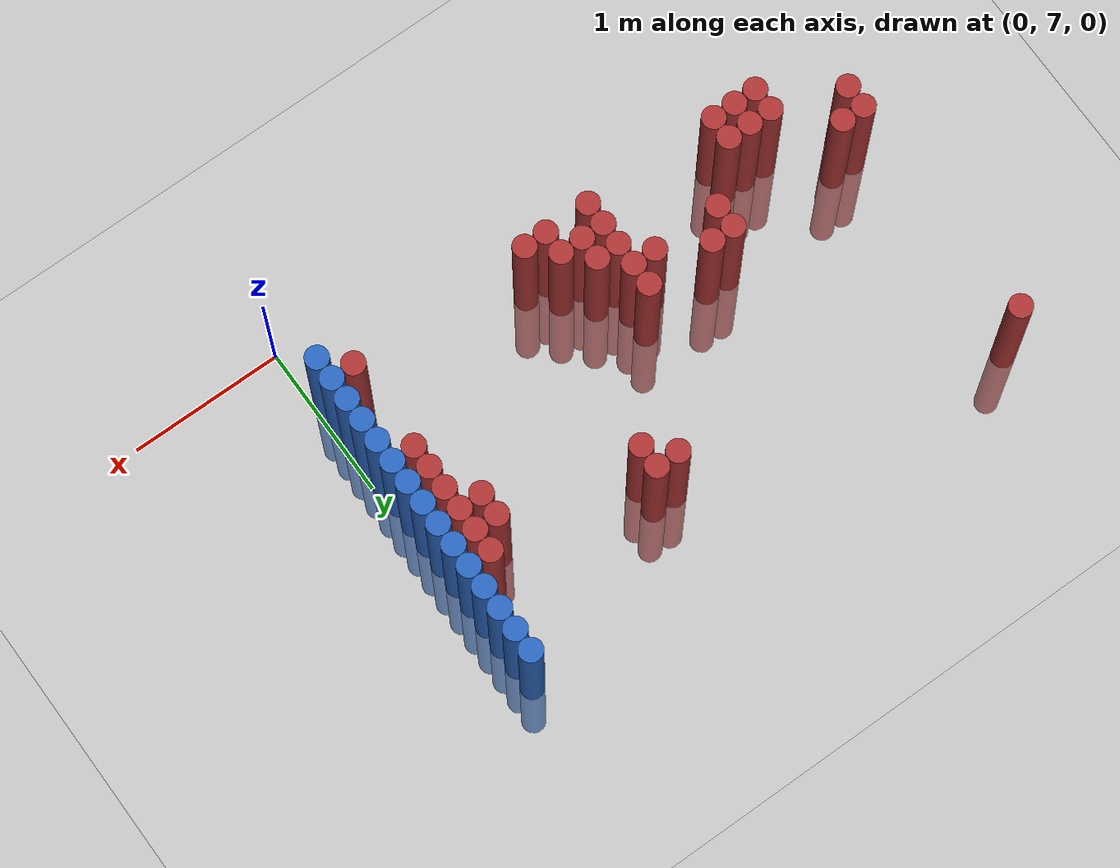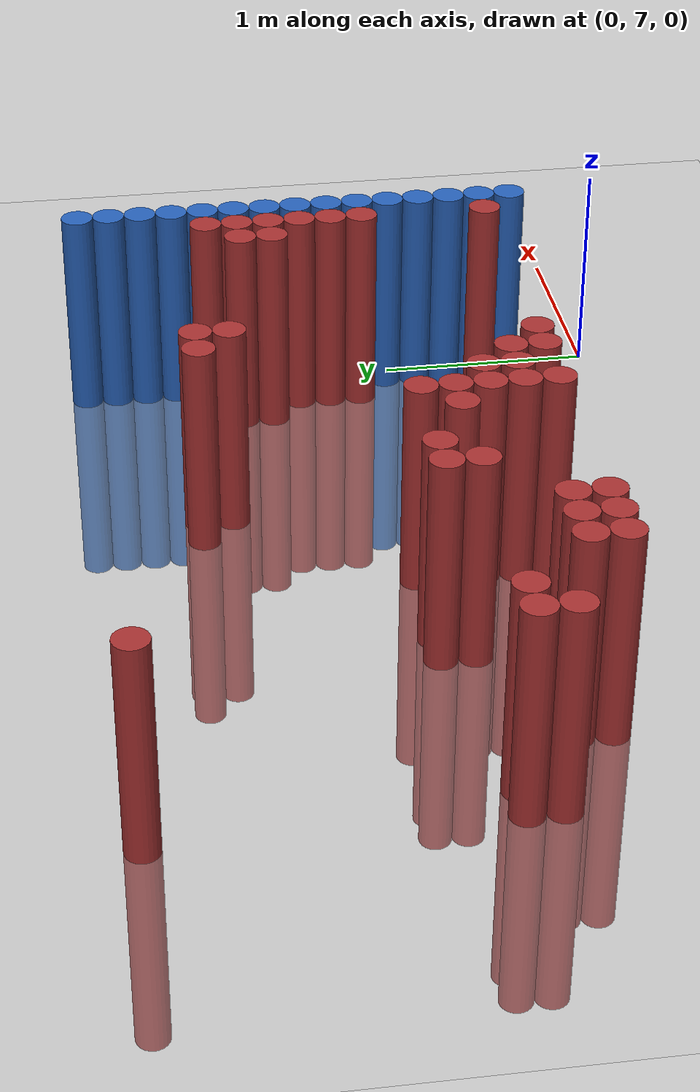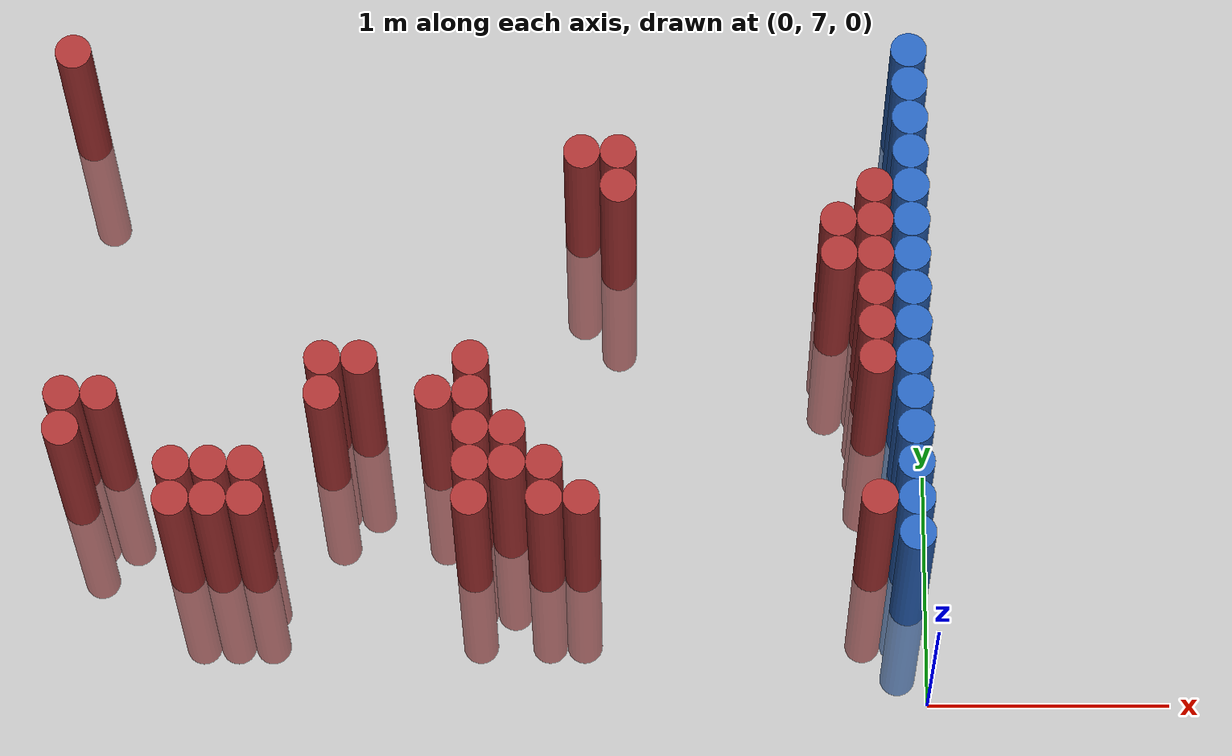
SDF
<sdf version="1.6">
 <world name="default">
  <model name="ground_plane">
   <static>1</static>
   <link name="link">
    <collision name="collision">
     <geometry><plane><normal>0 0 1</normal><size>100 100</size></plane></geometry>
     <surface><friction><ode><mu>100</mu><mu2>50</mu2></ode></friction></surface>
    </collision>
    <visual name="visual">
     <cast_shadows>0</cast_shadows>
     <geometry><plane><normal>0 0 1</normal><size>100 100</size></plane></geometry>
     <material>
      <script><uri>file://media/materials/scripts/gazebo.material</uri><name>Gazebo/Grey</name></script>
     </material>
    </visual>
   </link>
  </model>
  <model name="unit_cylinder_150">
   <static>1</static>
   <pose>-3.525000 7.875000 0.000000 0.000000 0.000000 0.000000</pose>
   <link name="link">
    <inertial>
     <mass>1</mass>
     <inertia><ixx>0.145833</ixx><ixy>0</ixy><ixz>0</ixz><iyy>0.145833</iyy><iyz>0</iyz><izz>0.125</izz></inertia>
    </inertial>
    <collision name="collision">
     <geometry><cylinder><radius>0.075000</radius><length>2</length></cylinder></geometry>
    </collision>
    <visual name="visual">
     <geometry><cylinder><radius>0.075000</radius><length>2</length></cylinder></geometry>
     <material>
      <ambient>0.648000 0.192000 0.192000 1</ambient>
      <diffuse>0.648000 0.192000 0.192000 1</diffuse>
     </material>
     <material>
      <script><name>Gazebo/Grey</name><uri>file://media/materials/scripts/gazebo.material</uri></script>
     </material>
    </visual>
   </link>
  </model>
  <model name="unit_cylinder_151">
   <static>1</static>
   <pose>-3.525000 8.025000 0.000000 0.000000 0.000000 0.000000</pose>
   <link name="link">
    <inertial>
     <mass>1</mass>
     <inertia><ixx>0.145833</ixx><ixy>0</ixy><ixz>0</ixz><iyy>0.145833</iyy><iyz>0</iyz><izz>0.125</izz></inertia>
    </inertial>
    <collision name="collision">
     <geometry><cylinder><radius>0.075000</radius><length>2</length></cylinder></geometry>
    </collision>
    <visual name="visual">
     <geometry><cylinder><radius>0.075000</radius><length>2</length></cylinder></geometry>
     <material>
      <ambient>0.648000 0.192000 0.192000 1</ambient>
      <diffuse>0.648000 0.192000 0.192000 1</diffuse>
     </material>
     <material>
      <script><name>Gazebo/Grey</name><uri>file://media/materials/scripts/gazebo.material</uri></script>
     </material>
    </visual>
   </link>
  </model>
  <model name="unit_cylinder_152">
   <static>1</static>
   <pose>-3.525000 9.525000 0.000000 0.000000 0.000000 0.000000</pose>
   <link name="link">
    <inertial>
     <mass>1</mass>
     <inertia><ixx>0.145833</ixx><ixy>0</ixy><ixz>0</ixz><iyy>0.145833</iyy><iyz>0</iyz><izz>0.125</izz></inertia>
    </inertial>
    <collision name="collision">
     <geometry><cylinder><radius>0.075000</radius><length>2</length></cylinder></geometry>
    </collision>
    <visual name="visual">
     <geometry><cylinder><radius>0.075000</radius><length>2</length></cylinder></geometry>
     <material>
      <ambient>0.648000 0.192000 0.192000 1</ambient>
      <diffuse>0.648000 0.192000 0.192000 1</diffuse>
     </material>
     <material>
      <script><name>Gazebo/Grey</name><uri>file://media/materials/scripts/gazebo.material</uri></script>
     </material>
    </visual>
   </link>
  </model>
  <model name="unit_cylinder_155">
   <static>1</static>
   <pose>-3.375000 8.025000 0.000000 0.000000 0.000000 0.000000</pose>
   <link name="link">
    <inertial>
     <mass>1</mass>
     <inertia><ixx>0.145833</ixx><ixy>0</ixy><ixz>0</ixz><iyy>0.145833</iyy><iyz>0</iyz><izz>0.125</izz></inertia>
    </inertial>
    <collision name="collision">
     <geometry><cylinder><radius>0.075000</radius><length>2</length></cylinder></geometry>
    </collision>
    <visual name="visual">
     <geometry><cylinder><radius>0.075000</radius><length>2</length></cylinder></geometry>
     <material>
      <ambient>0.648000 0.192000 0.192000 1</ambient>
      <diffuse>0.648000 0.192000 0.192000 1</diffuse>
     </material>
     <material>
      <script><name>Gazebo/Grey</name><uri>file://media/materials/scripts/gazebo.material</uri></script>
     </material>
    </visual>
   </link>
  </model>
  <model name="unit_cylinder_166">
   <static>1</static>
   <pose>-3.075000 7.575000 0.000000 0.000000 0.000000 0.000000</pose>
   <link name="link">
    <inertial>
     <mass>1</mass>
     <inertia><ixx>0.145833</ixx><ixy>0</ixy><ixz>0</ixz><iyy>0.145833</iyy><iyz>0</iyz><izz>0.125</izz></inertia>
    </inertial>
    <collision name="collision">
     <geometry><cylinder><radius>0.075000</radius><length>2</length></cylinder></geometry>
    </collision>
    <visual name="visual">
     <geometry><cylinder><radius>0.075000</radius><length>2</length></cylinder></geometry>
     <material>
      <ambient>0.648000 0.192000 0.192000 1</ambient>
      <diffuse>0.648000 0.192000 0.192000 1</diffuse>
     </material>
     <material>
      <script><name>Gazebo/Grey</name><uri>file://media/materials/scripts/gazebo.material</uri></script>
     </material>
    </visual>
   </link>
  </model>
  <model name="unit_cylinder_167">
   <static>1</static>
   <pose>-3.075000 7.725000 0.000000 0.000000 0.000000 0.000000</pose>
   <link name="link">
    <inertial>
     <mass>1</mass>
     <inertia><ixx>0.145833</ixx><ixy>0</ixy><ixz>0</ixz><iyy>0.145833</iyy><iyz>0</iyz><izz>0.125</izz></inertia>
    </inertial>
    <collision name="collision">
     <geometry><cylinder><radius>0.075000</radius><length>2</length></cylinder></geometry>
    </collision>
    <visual name="visual">
     <geometry><cylinder><radius>0.075000</radius><length>2</length></cylinder></geometry>
     <material>
      <ambient>0.648000 0.192000 0.192000 1</ambient>
      <diffuse>0.648000 0.192000 0.192000 1</diffuse>
     </material>
     <material>
      <script><name>Gazebo/Grey</name><uri>file://media/materials/scripts/gazebo.material</uri></script>
     </material>
    </visual>
   </link>
  </model>
  <model name="unit_cylinder_170">
   <static>1</static>
   <pose>-2.925000 7.575000 0.000000 0.000000 0.000000 0.000000</pose>
   <link name="link">
    <inertial>
     <mass>1</mass>
     <inertia><ixx>0.145833</ixx><ixy>0</ixy><ixz>0</ixz><iyy>0.145833</iyy><iyz>0</iyz><izz>0.125</izz></inertia>
    </inertial>
    <collision name="collision">
     <geometry><cylinder><radius>0.075000</radius><length>2</length></cylinder></geometry>
    </collision>
    <visual name="visual">
     <geometry><cylinder><radius>0.075000</radius><length>2</length></cylinder></geometry>
     <material>
      <ambient>0.648000 0.192000 0.192000 1</ambient>
      <diffuse>0.648000 0.192000 0.192000 1</diffuse>
     </material>
     <material>
      <script><name>Gazebo/Grey</name><uri>file://media/materials/scripts/gazebo.material</uri></script>
     </material>
    </visual>
   </link>
  </model>
  <model name="unit_cylinder_171">
   <static>1</static>
   <pose>-2.925000 7.725000 0.000000 0.000000 0.000000 0.000000</pose>
   <link name="link">
    <inertial>
     <mass>1</mass>
     <inertia><ixx>0.145833</ixx><ixy>0</ixy><ixz>0</ixz><iyy>0.145833</iyy><iyz>0</iyz><izz>0.125</izz></inertia>
    </inertial>
    <collision name="collision">
     <geometry><cylinder><radius>0.075000</radius><length>2</length></cylinder></geometry>
    </collision>
    <visual name="visual">
     <geometry><cylinder><radius>0.075000</radius><length>2</length></cylinder></geometry>
     <material>
      <ambient>0.648000 0.192000 0.192000 1</ambient>
      <diffuse>0.648000 0.192000 0.192000 1</diffuse>
     </material>
     <material>
      <script><name>Gazebo/Grey</name><uri>file://media/materials/scripts/gazebo.material</uri></script>
     </material>
    </visual>
   </link>
  </model>
  <model name="unit_cylinder_173">
   <static>1</static>
   <pose>-2.775000 7.575000 0.000000 0.000000 0.000000 0.000000</pose>
   <link name="link">
    <inertial>
     <mass>1</mass>
     <inertia><ixx>0.145833</ixx><ixy>0</ixy><ixz>0</ixz><iyy>0.145833</iyy><iyz>0</iyz><izz>0.125</izz></inertia>
    </inertial>
    <collision name="collision">
     <geometry><cylinder><radius>0.075000</radius><length>2</length></cylinder></geometry>
    </collision>
    <visual name="visual">
     <geometry><cylinder><radius>0.075000</radius><length>2</length></cylinder></geometry>
     <material>
      <ambient>0.648000 0.192000 0.192000 1</ambient>
      <diffuse>0.648000 0.192000 0.192000 1</diffuse>
     </material>
     <material>
      <script><name>Gazebo/Grey</name><uri>file://media/materials/scripts/gazebo.material</uri></script>
     </material>
    </visual>
   </link>
  </model>
  <model name="unit_cylinder_174">
   <static>1</static>
   <pose>-2.775000 7.725000 0.000000 0.000000 0.000000 0.000000</pose>
   <link name="link">
    <inertial>
     <mass>1</mass>
     <inertia><ixx>0.145833</ixx><ixy>0</ixy><ixz>0</ixz><iyy>0.145833</iyy><iyz>0</iyz><izz>0.125</izz></inertia>
    </inertial>
    <collision name="collision">
     <geometry><cylinder><radius>0.075000</radius><length>2</length></cylinder></geometry>
    </collision>
    <visual name="visual">
     <geometry><cylinder><radius>0.075000</radius><length>2</length></cylinder></geometry>
     <material>
      <ambient>0.648000 0.192000 0.192000 1</ambient>
      <diffuse>0.648000 0.192000 0.192000 1</diffuse>
     </material>
     <material>
      <script><name>Gazebo/Grey</name><uri>file://media/materials/scripts/gazebo.material</uri></script>
     </material>
    </visual>
   </link>
  </model>
  <model name="unit_cylinder_175">
   <static>1</static>
   <pose>-2.475000 8.025000 0.000000 0.000000 0.000000 0.000000</pose>
   <link name="link">
    <inertial>
     <mass>1</mass>
     <inertia><ixx>0.145833</ixx><ixy>0</ixy><ixz>0</ixz><iyy>0.145833</iyy><iyz>0</iyz><izz>0.125</izz></inertia>
    </inertial>
    <collision name="collision">
     <geometry><cylinder><radius>0.075000</radius><length>2</length></cylinder></geometry>
    </collision>
    <visual name="visual">
     <geometry><cylinder><radius>0.075000</radius><length>2</length></cylinder></geometry>
     <material>
      <ambient>0.648000 0.192000 0.192000 1</ambient>
      <diffuse>0.648000 0.192000 0.192000 1</diffuse>
     </material>
     <material>
      <script><name>Gazebo/Grey</name><uri>file://media/materials/scripts/gazebo.material</uri></script>
     </material>
    </visual>
   </link>
  </model>
  <model name="unit_cylinder_176">
   <static>1</static>
   <pose>-2.475000 8.175000 0.000000 0.000000 0.000000 0.000000</pose>
   <link name="link">
    <inertial>
     <mass>1</mass>
     <inertia><ixx>0.145833</ixx><ixy>0</ixy><ixz>0</ixz><iyy>0.145833</iyy><iyz>0</iyz><izz>0.125</izz></inertia>
    </inertial>
    <collision name="collision">
     <geometry><cylinder><radius>0.075000</radius><length>2</length></cylinder></geometry>
    </collision>
    <visual name="visual">
     <geometry><cylinder><radius>0.075000</radius><length>2</length></cylinder></geometry>
     <material>
      <ambient>0.648000 0.192000 0.192000 1</ambient>
      <diffuse>0.648000 0.192000 0.192000 1</diffuse>
     </material>
     <material>
      <script><name>Gazebo/Grey</name><uri>file://media/materials/scripts/gazebo.material</uri></script>
     </material>
    </visual>
   </link>
  </model>
  <model name="unit_cylinder_178">
   <static>1</static>
   <pose>-2.325000 8.175000 0.000000 0.000000 0.000000 0.000000</pose>
   <link name="link">
    <inertial>
     <mass>1</mass>
     <inertia><ixx>0.145833</ixx><ixy>0</ixy><ixz>0</ixz><iyy>0.145833</iyy><iyz>0</iyz><izz>0.125</izz></inertia>
    </inertial>
    <collision name="collision">
     <geometry><cylinder><radius>0.075000</radius><length>2</length></cylinder></geometry>
    </collision>
    <visual name="visual">
     <geometry><cylinder><radius>0.075000</radius><length>2</length></cylinder></geometry>
     <material>
      <ambient>0.648000 0.192000 0.192000 1</ambient>
      <diffuse>0.648000 0.192000 0.192000 1</diffuse>
     </material>
     <material>
      <script><name>Gazebo/Grey</name><uri>file://media/materials/scripts/gazebo.material</uri></script>
     </material>
    </visual>
   </link>
  </model>
  <model name="unit_cylinder_188">
   <static>1</static>
   <pose>-2.025000 8.025000 0.000000 0.000000 0.000000 0.000000</pose>
   <link name="link">
    <inertial>
     <mass>1</mass>
     <inertia><ixx>0.145833</ixx><ixy>0</ixy><ixz>0</ixz><iyy>0.145833</iyy><iyz>0</iyz><izz>0.125</izz></inertia>
    </inertial>
    <collision name="collision">
     <geometry><cylinder><radius>0.075000</radius><length>2</length></cylinder></geometry>
    </collision>
    <visual name="visual">
     <geometry><cylinder><radius>0.075000</radius><length>2</length></cylinder></geometry>
     <material>
      <ambient>0.648000 0.192000 0.192000 1</ambient>
      <diffuse>0.648000 0.192000 0.192000 1</diffuse>
     </material>
     <material>
      <script><name>Gazebo/Grey</name><uri>file://media/materials/scripts/gazebo.material</uri></script>
     </material>
    </visual>
   </link>
  </model>
  <model name="unit_cylinder_191">
   <static>1</static>
   <pose>-1.875000 7.575000 0.000000 0.000000 0.000000 0.000000</pose>
   <link name="link">
    <inertial>
     <mass>1</mass>
     <inertia><ixx>0.145833</ixx><ixy>0</ixy><ixz>0</ixz><iyy>0.145833</iyy><iyz>0</iyz><izz>0.125</izz></inertia>
    </inertial>
    <collision name="collision">
     <geometry><cylinder><radius>0.075000</radius><length>2</length></cylinder></geometry>
    </collision>
    <visual name="visual">
     <geometry><cylinder><radius>0.075000</radius><length>2</length></cylinder></geometry>
     <material>
      <ambient>0.648000 0.192000 0.192000 1</ambient>
      <diffuse>0.648000 0.192000 0.192000 1</diffuse>
     </material>
     <material>
      <script><name>Gazebo/Grey</name><uri>file://media/materials/scripts/gazebo.material</uri></script>
     </material>
    </visual>
   </link>
  </model>
  <model name="unit_cylinder_192">
   <static>1</static>
   <pose>-1.875000 7.725000 0.000000 0.000000 0.000000 0.000000</pose>
   <link name="link">
    <inertial>
     <mass>1</mass>
     <inertia><ixx>0.145833</ixx><ixy>0</ixy><ixz>0</ixz><iyy>0.145833</iyy><iyz>0</iyz><izz>0.125</izz></inertia>
    </inertial>
    <collision name="collision">
     <geometry><cylinder><radius>0.075000</radius><length>2</length></cylinder></geometry>
    </collision>
    <visual name="visual">
     <geometry><cylinder><radius>0.075000</radius><length>2</length></cylinder></geometry>
     <material>
      <ambient>0.648000 0.192000 0.192000 1</ambient>
      <diffuse>0.648000 0.192000 0.192000 1</diffuse>
     </material>
     <material>
      <script><name>Gazebo/Grey</name><uri>file://media/materials/scripts/gazebo.material</uri></script>
     </material>
    </visual>
   </link>
  </model>
  <model name="unit_cylinder_193">
   <static>1</static>
   <pose>-1.875000 7.875000 0.000000 0.000000 0.000000 0.000000</pose>
   <link name="link">
    <inertial>
     <mass>1</mass>
     <inertia><ixx>0.145833</ixx><ixy>0</ixy><ixz>0</ixz><iyy>0.145833</iyy><iyz>0</iyz><izz>0.125</izz></inertia>
    </inertial>
    <collision name="collision">
     <geometry><cylinder><radius>0.075000</radius><length>2</length></cylinder></geometry>
    </collision>
    <visual name="visual">
     <geometry><cylinder><radius>0.075000</radius><length>2</length></cylinder></geometry>
     <material>
      <ambient>0.648000 0.192000 0.192000 1</ambient>
      <diffuse>0.648000 0.192000 0.192000 1</diffuse>
     </material>
     <material>
      <script><name>Gazebo/Grey</name><uri>file://media/materials/scripts/gazebo.material</uri></script>
     </material>
    </visual>
   </link>
  </model>
  <model name="unit_cylinder_194">
   <static>1</static>
   <pose>-1.875000 8.025000 0.000000 0.000000 0.000000 0.000000</pose>
   <link name="link">
    <inertial>
     <mass>1</mass>
     <inertia><ixx>0.145833</ixx><ixy>0</ixy><ixz>0</ixz><iyy>0.145833</iyy><iyz>0</iyz><izz>0.125</izz></inertia>
    </inertial>
    <collision name="collision">
     <geometry><cylinder><radius>0.075000</radius><length>2</length></cylinder></geometry>
    </collision>
    <visual name="visual">
     <geometry><cylinder><radius>0.075000</radius><length>2</length></cylinder></geometry>
     <material>
      <ambient>0.648000 0.192000 0.192000 1</ambient>
      <diffuse>0.648000 0.192000 0.192000 1</diffuse>
     </material>
     <material>
      <script><name>Gazebo/Grey</name><uri>file://media/materials/scripts/gazebo.material</uri></script>
     </material>
    </visual>
   </link>
  </model>
  <model name="unit_cylinder_195">
   <static>1</static>
   <pose>-1.875000 8.175000 0.000000 0.000000 0.000000 0.000000</pose>
   <link name="link">
    <inertial>
     <mass>1</mass>
     <inertia><ixx>0.145833</ixx><ixy>0</ixy><ixz>0</ixz><iyy>0.145833</iyy><iyz>0</iyz><izz>0.125</izz></inertia>
    </inertial>
    <collision name="collision">
     <geometry><cylinder><radius>0.075000</radius><length>2</length></cylinder></geometry>
    </collision>
    <visual name="visual">
     <geometry><cylinder><radius>0.075000</radius><length>2</length></cylinder></geometry>
     <material>
      <ambient>0.648000 0.192000 0.192000 1</ambient>
      <diffuse>0.648000 0.192000 0.192000 1</diffuse>
     </material>
     <material>
      <script><name>Gazebo/Grey</name><uri>file://media/materials/scripts/gazebo.material</uri></script>
     </material>
    </visual>
   </link>
  </model>
  <model name="unit_cylinder_197">
   <static>1</static>
   <pose>-1.725000 7.725000 0.000000 0.000000 0.000000 0.000000</pose>
   <link name="link">
    <inertial>
     <mass>1</mass>
     <inertia><ixx>0.145833</ixx><ixy>0</ixy><ixz>0</ixz><iyy>0.145833</iyy><iyz>0</iyz><izz>0.125</izz></inertia>
    </inertial>
    <collision name="collision">
     <geometry><cylinder><radius>0.075000</radius><length>2</length></cylinder></geometry>
    </collision>
    <visual name="visual">
     <geometry><cylinder><radius>0.075000</radius><length>2</length></cylinder></geometry>
     <material>
      <ambient>0.648000 0.192000 0.192000 1</ambient>
      <diffuse>0.648000 0.192000 0.192000 1</diffuse>
     </material>
     <material>
      <script><name>Gazebo/Grey</name><uri>file://media/materials/scripts/gazebo.material</uri></script>
     </material>
    </visual>
   </link>
  </model>
  <model name="unit_cylinder_198">
   <static>1</static>
   <pose>-1.725000 7.875000 0.000000 0.000000 0.000000 0.000000</pose>
   <link name="link">
    <inertial>
     <mass>1</mass>
     <inertia><ixx>0.145833</ixx><ixy>0</ixy><ixz>0</ixz><iyy>0.145833</iyy><iyz>0</iyz><izz>0.125</izz></inertia>
    </inertial>
    <collision name="collision">
     <geometry><cylinder><radius>0.075000</radius><length>2</length></cylinder></geometry>
    </collision>
    <visual name="visual">
     <geometry><cylinder><radius>0.075000</radius><length>2</length></cylinder></geometry>
     <material>
      <ambient>0.648000 0.192000 0.192000 1</ambient>
      <diffuse>0.648000 0.192000 0.192000 1</diffuse>
     </material>
     <material>
      <script><name>Gazebo/Grey</name><uri>file://media/materials/scripts/gazebo.material</uri></script>
     </material>
    </visual>
   </link>
  </model>
  <model name="unit_cylinder_202">
   <static>1</static>
   <pose>-1.575000 7.575000 0.000000 0.000000 0.000000 0.000000</pose>
   <link name="link">
    <inertial>
     <mass>1</mass>
     <inertia><ixx>0.145833</ixx><ixy>0</ixy><ixz>0</ixz><iyy>0.145833</iyy><iyz>0</iyz><izz>0.125</izz></inertia>
    </inertial>
    <collision name="collision">
     <geometry><cylinder><radius>0.075000</radius><length>2</length></cylinder></geometry>
    </collision>
    <visual name="visual">
     <geometry><cylinder><radius>0.075000</radius><length>2</length></cylinder></geometry>
     <material>
      <ambient>0.648000 0.192000 0.192000 1</ambient>
      <diffuse>0.648000 0.192000 0.192000 1</diffuse>
     </material>
     <material>
      <script><name>Gazebo/Grey</name><uri>file://media/materials/scripts/gazebo.material</uri></script>
     </material>
    </visual>
   </link>
  </model>
  <model name="unit_cylinder_203">
   <static>1</static>
   <pose>-1.575000 7.725000 0.000000 0.000000 0.000000 0.000000</pose>
   <link name="link">
    <inertial>
     <mass>1</mass>
     <inertia><ixx>0.145833</ixx><ixy>0</ixy><ixz>0</ixz><iyy>0.145833</iyy><iyz>0</iyz><izz>0.125</izz></inertia>
    </inertial>
    <collision name="collision">
     <geometry><cylinder><radius>0.075000</radius><length>2</length></cylinder></geometry>
    </collision>
    <visual name="visual">
     <geometry><cylinder><radius>0.075000</radius><length>2</length></cylinder></geometry>
     <material>
      <ambient>0.648000 0.192000 0.192000 1</ambient>
      <diffuse>0.648000 0.192000 0.192000 1</diffuse>
     </material>
     <material>
      <script><name>Gazebo/Grey</name><uri>file://media/materials/scripts/gazebo.material</uri></script>
     </material>
    </visual>
   </link>
  </model>
  <model name="unit_cylinder_205">
   <static>1</static>
   <pose>-1.425000 7.575000 0.000000 0.000000 0.000000 0.000000</pose>
   <link name="link">
    <inertial>
     <mass>1</mass>
     <inertia><ixx>0.145833</ixx><ixy>0</ixy><ixz>0</ixz><iyy>0.145833</iyy><iyz>0</iyz><izz>0.125</izz></inertia>
    </inertial>
    <collision name="collision">
     <geometry><cylinder><radius>0.075000</radius><length>2</length></cylinder></geometry>
    </collision>
    <visual name="visual">
     <geometry><cylinder><radius>0.075000</radius><length>2</length></cylinder></geometry>
     <material>
      <ambient>0.648000 0.192000 0.192000 1</ambient>
      <diffuse>0.648000 0.192000 0.192000 1</diffuse>
     </material>
     <material>
      <script><name>Gazebo/Grey</name><uri>file://media/materials/scripts/gazebo.material</uri></script>
     </material>
    </visual>
   </link>
  </model>
  <model name="unit_cylinder_206">
   <static>1</static>
   <pose>-1.425000 9.075000 0.000000 0.000000 0.000000 0.000000</pose>
   <link name="link">
    <inertial>
     <mass>1</mass>
     <inertia><ixx>0.145833</ixx><ixy>0</ixy><ixz>0</ixz><iyy>0.145833</iyy><iyz>0</iyz><izz>0.125</izz></inertia>
    </inertial>
    <collision name="collision">
     <geometry><cylinder><radius>0.075000</radius><length>2</length></cylinder></geometry>
    </collision>
    <visual name="visual">
     <geometry><cylinder><radius>0.075000</radius><length>2</length></cylinder></geometry>
     <material>
      <ambient>0.648000 0.192000 0.192000 1</ambient>
      <diffuse>0.648000 0.192000 0.192000 1</diffuse>
     </material>
     <material>
      <script><name>Gazebo/Grey</name><uri>file://media/materials/scripts/gazebo.material</uri></script>
     </material>
    </visual>
   </link>
  </model>
  <model name="unit_cylinder_209">
   <static>1</static>
   <pose>-1.275000 8.925000 0.000000 0.000000 0.000000 0.000000</pose>
   <link name="link">
    <inertial>
     <mass>1</mass>
     <inertia><ixx>0.145833</ixx><ixy>0</ixy><ixz>0</ixz><iyy>0.145833</iyy><iyz>0</iyz><izz>0.125</izz></inertia>
    </inertial>
    <collision name="collision">
     <geometry><cylinder><radius>0.075000</radius><length>2</length></cylinder></geometry>
    </collision>
    <visual name="visual">
     <geometry><cylinder><radius>0.075000</radius><length>2</length></cylinder></geometry>
     <material>
      <ambient>0.648000 0.192000 0.192000 1</ambient>
      <diffuse>0.648000 0.192000 0.192000 1</diffuse>
     </material>
     <material>
      <script><name>Gazebo/Grey</name><uri>file://media/materials/scripts/gazebo.material</uri></script>
     </material>
    </visual>
   </link>
  </model>
  <model name="unit_cylinder_210">
   <static>1</static>
   <pose>-1.275000 9.075000 0.000000 0.000000 0.000000 0.000000</pose>
   <link name="link">
    <inertial>
     <mass>1</mass>
     <inertia><ixx>0.145833</ixx><ixy>0</ixy><ixz>0</ixz><iyy>0.145833</iyy><iyz>0</iyz><izz>0.125</izz></inertia>
    </inertial>
    <collision name="collision">
     <geometry><cylinder><radius>0.075000</radius><length>2</length></cylinder></geometry>
    </collision>
    <visual name="visual">
     <geometry><cylinder><radius>0.075000</radius><length>2</length></cylinder></geometry>
     <material>
      <ambient>0.648000 0.192000 0.192000 1</ambient>
      <diffuse>0.648000 0.192000 0.192000 1</diffuse>
     </material>
     <material>
      <script><name>Gazebo/Grey</name><uri>file://media/materials/scripts/gazebo.material</uri></script>
     </material>
    </visual>
   </link>
  </model>
  <model name="unit_cylinder_211">
   <static>1</static>
   <pose>-0.375000 8.625000 0.000000 0.000000 0.000000 0.000000</pose>
   <link name="link">
    <inertial>
     <mass>1</mass>
     <inertia><ixx>0.145833</ixx><ixy>0</ixy><ixz>0</ixz><iyy>0.145833</iyy><iyz>0</iyz><izz>0.125</izz></inertia>
    </inertial>
    <collision name="collision">
     <geometry><cylinder><radius>0.075000</radius><length>2</length></cylinder></geometry>
    </collision>
    <visual name="visual">
     <geometry><cylinder><radius>0.075000</radius><length>2</length></cylinder></geometry>
     <material>
      <ambient>0.648000 0.192000 0.192000 1</ambient>
      <diffuse>0.648000 0.192000 0.192000 1</diffuse>
     </material>
     <material>
      <script><name>Gazebo/Grey</name><uri>file://media/materials/scripts/gazebo.material</uri></script>
     </material>
    </visual>
   </link>
  </model>
  <model name="unit_cylinder_212">
   <static>1</static>
   <pose>-0.375000 8.775000 0.000000 0.000000 0.000000 0.000000</pose>
   <link name="link">
    <inertial>
     <mass>1</mass>
     <inertia><ixx>0.145833</ixx><ixy>0</ixy><ixz>0</ixz><iyy>0.145833</iyy><iyz>0</iyz><izz>0.125</izz></inertia>
    </inertial>
    <collision name="collision">
     <geometry><cylinder><radius>0.075000</radius><length>2</length></cylinder></geometry>
    </collision>
    <visual name="visual">
     <geometry><cylinder><radius>0.075000</radius><length>2</length></cylinder></geometry>
     <material>
      <ambient>0.648000 0.192000 0.192000 1</ambient>
      <diffuse>0.648000 0.192000 0.192000 1</diffuse>
     </material>
     <material>
      <script><name>Gazebo/Grey</name><uri>file://media/materials/scripts/gazebo.material</uri></script>
     </material>
    </visual>
   </link>
  </model>
  <model name="unit_cylinder_217">
   <static>1</static>
   <pose>-0.225000 7.575000 0.000000 0.000000 0.000000 0.000000</pose>
   <link name="link">
    <inertial>
     <mass>1</mass>
     <inertia><ixx>0.145833</ixx><ixy>0</ixy><ixz>0</ixz><iyy>0.145833</iyy><iyz>0</iyz><izz>0.125</izz></inertia>
    </inertial>
    <collision name="collision">
     <geometry><cylinder><radius>0.075000</radius><length>2</length></cylinder></geometry>
    </collision>
    <visual name="visual">
     <geometry><cylinder><radius>0.075000</radius><length>2</length></cylinder></geometry>
     <material>
      <ambient>0.648000 0.192000 0.192000 1</ambient>
      <diffuse>0.648000 0.192000 0.192000 1</diffuse>
     </material>
     <material>
      <script><name>Gazebo/Grey</name><uri>file://media/materials/scripts/gazebo.material</uri></script>
     </material>
    </visual>
   </link>
  </model>
  <model name="unit_cylinder_218">
   <static>1</static>
   <pose>-0.225000 8.175000 0.000000 0.000000 0.000000 0.000000</pose>
   <link name="link">
    <inertial>
     <mass>1</mass>
     <inertia><ixx>0.145833</ixx><ixy>0</ixy><ixz>0</ixz><iyy>0.145833</iyy><iyz>0</iyz><izz>0.125</izz></inertia>
    </inertial>
    <collision name="collision">
     <geometry><cylinder><radius>0.075000</radius><length>2</length></cylinder></geometry>
    </collision>
    <visual name="visual">
     <geometry><cylinder><radius>0.075000</radius><length>2</length></cylinder></geometry>
     <material>
      <ambient>0.648000 0.192000 0.192000 1</ambient>
      <diffuse>0.648000 0.192000 0.192000 1</diffuse>
     </material>
     <material>
      <script><name>Gazebo/Grey</name><uri>file://media/materials/scripts/gazebo.material</uri></script>
     </material>
    </visual>
   </link>
  </model>
  <model name="unit_cylinder_219">
   <static>1</static>
   <pose>-0.225000 8.325000 0.000000 0.000000 0.000000 0.000000</pose>
   <link name="link">
    <inertial>
     <mass>1</mass>
     <inertia><ixx>0.145833</ixx><ixy>0</ixy><ixz>0</ixz><iyy>0.145833</iyy><iyz>0</iyz><izz>0.125</izz></inertia>
    </inertial>
    <collision name="collision">
     <geometry><cylinder><radius>0.075000</radius><length>2</length></cylinder></geometry>
    </collision>
    <visual name="visual">
     <geometry><cylinder><radius>0.075000</radius><length>2</length></cylinder></geometry>
     <material>
      <ambient>0.648000 0.192000 0.192000 1</ambient>
      <diffuse>0.648000 0.192000 0.192000 1</diffuse>
     </material>
     <material>
      <script><name>Gazebo/Grey</name><uri>file://media/materials/scripts/gazebo.material</uri></script>
     </material>
    </visual>
   </link>
  </model>
  <model name="unit_cylinder_220">
   <static>1</static>
   <pose>-0.225000 8.475000 0.000000 0.000000 0.000000 0.000000</pose>
   <link name="link">
    <inertial>
     <mass>1</mass>
     <inertia><ixx>0.145833</ixx><ixy>0</ixy><ixz>0</ixz><iyy>0.145833</iyy><iyz>0</iyz><izz>0.125</izz></inertia>
    </inertial>
    <collision name="collision">
     <geometry><cylinder><radius>0.075000</radius><length>2</length></cylinder></geometry>
    </collision>
    <visual name="visual">
     <geometry><cylinder><radius>0.075000</radius><length>2</length></cylinder></geometry>
     <material>
      <ambient>0.648000 0.192000 0.192000 1</ambient>
      <diffuse>0.648000 0.192000 0.192000 1</diffuse>
     </material>
     <material>
      <script><name>Gazebo/Grey</name><uri>file://media/materials/scripts/gazebo.material</uri></script>
     </material>
    </visual>
   </link>
  </model>
  <model name="unit_cylinder_221">
   <static>1</static>
   <pose>-0.225000 8.625000 0.000000 0.000000 0.000000 0.000000</pose>
   <link name="link">
    <inertial>
     <mass>1</mass>
     <inertia><ixx>0.145833</ixx><ixy>0</ixy><ixz>0</ixz><iyy>0.145833</iyy><iyz>0</iyz><izz>0.125</izz></inertia>
    </inertial>
    <collision name="collision">
     <geometry><cylinder><radius>0.075000</radius><length>2</length></cylinder></geometry>
    </collision>
    <visual name="visual">
     <geometry><cylinder><radius>0.075000</radius><length>2</length></cylinder></geometry>
     <material>
      <ambient>0.648000 0.192000 0.192000 1</ambient>
      <diffuse>0.648000 0.192000 0.192000 1</diffuse>
     </material>
     <material>
      <script><name>Gazebo/Grey</name><uri>file://media/materials/scripts/gazebo.material</uri></script>
     </material>
    </visual>
   </link>
  </model>
  <model name="unit_cylinder_222">
   <static>1</static>
   <pose>-0.225000 8.775000 0.000000 0.000000 0.000000 0.000000</pose>
   <link name="link">
    <inertial>
     <mass>1</mass>
     <inertia><ixx>0.145833</ixx><ixy>0</ixy><ixz>0</ixz><iyy>0.145833</iyy><iyz>0</iyz><izz>0.125</izz></inertia>
    </inertial>
    <collision name="collision">
     <geometry><cylinder><radius>0.075000</radius><length>2</length></cylinder></geometry>
    </collision>
    <visual name="visual">
     <geometry><cylinder><radius>0.075000</radius><length>2</length></cylinder></geometry>
     <material>
      <ambient>0.648000 0.192000 0.192000 1</ambient>
      <diffuse>0.648000 0.192000 0.192000 1</diffuse>
     </material>
     <material>
      <script><name>Gazebo/Grey</name><uri>file://media/materials/scripts/gazebo.material</uri></script>
     </material>
    </visual>
   </link>
  </model>
  <model name="unit_cylinder_223">
   <static>1</static>
   <pose>-0.225000 8.925000 0.000000 0.000000 0.000000 0.000000</pose>
   <link name="link">
    <inertial>
     <mass>1</mass>
     <inertia><ixx>0.145833</ixx><ixy>0</ixy><ixz>0</ixz><iyy>0.145833</iyy><iyz>0</iyz><izz>0.125</izz></inertia>
    </inertial>
    <collision name="collision">
     <geometry><cylinder><radius>0.075000</radius><length>2</length></cylinder></geometry>
    </collision>
    <visual name="visual">
     <geometry><cylinder><radius>0.075000</radius><length>2</length></cylinder></geometry>
     <material>
      <ambient>0.648000 0.192000 0.192000 1</ambient>
      <diffuse>0.648000 0.192000 0.192000 1</diffuse>
     </material>
     <material>
      <script><name>Gazebo/Grey</name><uri>file://media/materials/scripts/gazebo.material</uri></script>
     </material>
    </visual>
   </link>
  </model>
  <model name="unit_cylinder_239">
   <static>1</static>
   <pose>-0.075000 7.425000 0.000000 0.000000 0.000000 0.000000</pose>
   <link name="link">
    <inertial>
     <mass>1</mass>
     <inertia><ixx>0.145833</ixx><ixy>0</ixy><ixz>0</ixz><iyy>0.145833</iyy><iyz>0</iyz><izz>0.125</izz></inertia>
    </inertial>
    <collision name="collision">
     <geometry><cylinder><radius>0.075000</radius><length>2</length></cylinder></geometry>
    </collision>
    <visual name="visual">
     <geometry><cylinder><radius>0.075000</radius><length>2</length></cylinder></geometry>
     <material>
      <ambient>0.152000 0.379000 0.720000 1</ambient>
      <diffuse>0.152000 0.379000 0.720000 1</diffuse>
     </material>
     <material>
      <script><name>Gazebo/Grey</name><uri>file://media/materials/scripts/gazebo.material</uri></script>
     </material>
    </visual>
   </link>
  </model>
  <model name="unit_cylinder_240">
   <static>1</static>
   <pose>-0.075000 7.575000 0.000000 0.000000 0.000000 0.000000</pose>
   <link name="link">
    <inertial>
     <mass>1</mass>
     <inertia><ixx>0.145833</ixx><ixy>0</ixy><ixz>0</ixz><iyy>0.145833</iyy><iyz>0</iyz><izz>0.125</izz></inertia>
    </inertial>
    <collision name="collision">
     <geometry><cylinder><radius>0.075000</radius><length>2</length></cylinder></geometry>
    </collision>
    <visual name="visual">
     <geometry><cylinder><radius>0.075000</radius><length>2</length></cylinder></geometry>
     <material>
      <ambient>0.152000 0.379000 0.720000 1</ambient>
      <diffuse>0.152000 0.379000 0.720000 1</diffuse>
     </material>
     <material>
      <script><name>Gazebo/Grey</name><uri>file://media/materials/scripts/gazebo.material</uri></script>
     </material>
    </visual>
   </link>
  </model>
  <model name="unit_cylinder_241">
   <static>1</static>
   <pose>-0.075000 7.725000 0.000000 0.000000 0.000000 0.000000</pose>
   <link name="link">
    <inertial>
     <mass>1</mass>
     <inertia><ixx>0.145833</ixx><ixy>0</ixy><ixz>0</ixz><iyy>0.145833</iyy><iyz>0</iyz><izz>0.125</izz></inertia>
    </inertial>
    <collision name="collision">
     <geometry><cylinder><radius>0.075000</radius><length>2</length></cylinder></geometry>
    </collision>
    <visual name="visual">
     <geometry><cylinder><radius>0.075000</radius><length>2</length></cylinder></geometry>
     <material>
      <ambient>0.152000 0.379000 0.720000 1</ambient>
      <diffuse>0.152000 0.379000 0.720000 1</diffuse>
     </material>
     <material>
      <script><name>Gazebo/Grey</name><uri>file://media/materials/scripts/gazebo.material</uri></script>
     </material>
    </visual>
   </link>
  </model>
  <model name="unit_cylinder_242">
   <static>1</static>
   <pose>-0.075000 7.875000 0.000000 0.000000 0.000000 0.000000</pose>
   <link name="link">
    <inertial>
     <mass>1</mass>
     <inertia><ixx>0.145833</ixx><ixy>0</ixy><ixz>0</ixz><iyy>0.145833</iyy><iyz>0</iyz><izz>0.125</izz></inertia>
    </inertial>
    <collision name="collision">
     <geometry><cylinder><radius>0.075000</radius><length>2</length></cylinder></geometry>
    </collision>
    <visual name="visual">
     <geometry><cylinder><radius>0.075000</radius><length>2</length></cylinder></geometry>
     <material>
      <ambient>0.152000 0.379000 0.720000 1</ambient>
      <diffuse>0.152000 0.379000 0.720000 1</diffuse>
     </material>
     <material>
      <script><name>Gazebo/Grey</name><uri>file://media/materials/scripts/gazebo.material</uri></script>
     </material>
    </visual>
   </link>
  </model>
  <model name="unit_cylinder_243">
   <static>1</static>
   <pose>-0.075000 8.025000 0.000000 0.000000 0.000000 0.000000</pose>
   <link name="link">
    <inertial>
     <mass>1</mass>
     <inertia><ixx>0.145833</ixx><ixy>0</ixy><ixz>0</ixz><iyy>0.145833</iyy><iyz>0</iyz><izz>0.125</izz></inertia>
    </inertial>
    <collision name="collision">
     <geometry><cylinder><radius>0.075000</radius><length>2</length></cylinder></geometry>
    </collision>
    <visual name="visual">
     <geometry><cylinder><radius>0.075000</radius><length>2</length></cylinder></geometry>
     <material>
      <ambient>0.152000 0.379000 0.720000 1</ambient>
      <diffuse>0.152000 0.379000 0.720000 1</diffuse>
     </material>
     <material>
      <script><name>Gazebo/Grey</name><uri>file://media/materials/scripts/gazebo.material</uri></script>
     </material>
    </visual>
   </link>
  </model>
  <model name="unit_cylinder_244">
   <static>1</static>
   <pose>-0.075000 8.175000 0.000000 0.000000 0.000000 0.000000</pose>
   <link name="link">
    <inertial>
     <mass>1</mass>
     <inertia><ixx>0.145833</ixx><ixy>0</ixy><ixz>0</ixz><iyy>0.145833</iyy><iyz>0</iyz><izz>0.125</izz></inertia>
    </inertial>
    <collision name="collision">
     <geometry><cylinder><radius>0.075000</radius><length>2</length></cylinder></geometry>
    </collision>
    <visual name="visual">
     <geometry><cylinder><radius>0.075000</radius><length>2</length></cylinder></geometry>
     <material>
      <ambient>0.152000 0.379000 0.720000 1</ambient>
      <diffuse>0.152000 0.379000 0.720000 1</diffuse>
     </material>
     <material>
      <script><name>Gazebo/Grey</name><uri>file://media/materials/scripts/gazebo.material</uri></script>
     </material>
    </visual>
   </link>
  </model>
  <model name="unit_cylinder_245">
   <static>1</static>
   <pose>-0.075000 8.325000 0.000000 0.000000 0.000000 0.000000</pose>
   <link name="link">
    <inertial>
     <mass>1</mass>
     <inertia><ixx>0.145833</ixx><ixy>0</ixy><ixz>0</ixz><iyy>0.145833</iyy><iyz>0</iyz><izz>0.125</izz></inertia>
    </inertial>
    <collision name="collision">
     <geometry><cylinder><radius>0.075000</radius><length>2</length></cylinder></geometry>
    </collision>
    <visual name="visual">
     <geometry><cylinder><radius>0.075000</radius><length>2</length></cylinder></geometry>
     <material>
      <ambient>0.152000 0.379000 0.720000 1</ambient>
      <diffuse>0.152000 0.379000 0.720000 1</diffuse>
     </material>
     <material>
      <script><name>Gazebo/Grey</name><uri>file://media/materials/scripts/gazebo.material</uri></script>
     </material>
    </visual>
   </link>
  </model>
  <model name="unit_cylinder_246">
   <static>1</static>
   <pose>-0.075000 8.475000 0.000000 0.000000 0.000000 0.000000</pose>
   <link name="link">
    <inertial>
     <mass>1</mass>
     <inertia><ixx>0.145833</ixx><ixy>0</ixy><ixz>0</ixz><iyy>0.145833</iyy><iyz>0</iyz><izz>0.125</izz></inertia>
    </inertial>
    <collision name="collision">
     <geometry><cylinder><radius>0.075000</radius><length>2</length></cylinder></geometry>
    </collision>
    <visual name="visual">
     <geometry><cylinder><radius>0.075000</radius><length>2</length></cylinder></geometry>
     <material>
      <ambient>0.152000 0.379000 0.720000 1</ambient>
      <diffuse>0.152000 0.379000 0.720000 1</diffuse>
     </material>
     <material>
      <script><name>Gazebo/Grey</name><uri>file://media/materials/scripts/gazebo.material</uri></script>
     </material>
    </visual>
   </link>
  </model>
  <model name="unit_cylinder_247">
   <static>1</static>
   <pose>-0.075000 8.625000 0.000000 0.000000 0.000000 0.000000</pose>
   <link name="link">
    <inertial>
     <mass>1</mass>
     <inertia><ixx>0.145833</ixx><ixy>0</ixy><ixz>0</ixz><iyy>0.145833</iyy><iyz>0</iyz><izz>0.125</izz></inertia>
    </inertial>
    <collision name="collision">
     <geometry><cylinder><radius>0.075000</radius><length>2</length></cylinder></geometry>
    </collision>
    <visual name="visual">
     <geometry><cylinder><radius>0.075000</radius><length>2</length></cylinder></geometry>
     <material>
      <ambient>0.152000 0.379000 0.720000 1</ambient>
      <diffuse>0.152000 0.379000 0.720000 1</diffuse>
     </material>
     <material>
      <script><name>Gazebo/Grey</name><uri>file://media/materials/scripts/gazebo.material</uri></script>
     </material>
    </visual>
   </link>
  </model>
  <model name="unit_cylinder_248">
   <static>1</static>
   <pose>-0.075000 8.775000 0.000000 0.000000 0.000000 0.000000</pose>
   <link name="link">
    <inertial>
     <mass>1</mass>
     <inertia><ixx>0.145833</ixx><ixy>0</ixy><ixz>0</ixz><iyy>0.145833</iyy><iyz>0</iyz><izz>0.125</izz></inertia>
    </inertial>
    <collision name="collision">
     <geometry><cylinder><radius>0.075000</radius><length>2</length></cylinder></geometry>
    </collision>
    <visual name="visual">
     <geometry><cylinder><radius>0.075000</radius><length>2</length></cylinder></geometry>
     <material>
      <ambient>0.152000 0.379000 0.720000 1</ambient>
      <diffuse>0.152000 0.379000 0.720000 1</diffuse>
     </material>
     <material>
      <script><name>Gazebo/Grey</name><uri>file://media/materials/scripts/gazebo.material</uri></script>
     </material>
    </visual>
   </link>
  </model>
  <model name="unit_cylinder_249">
   <static>1</static>
   <pose>-0.075000 8.925000 0.000000 0.000000 0.000000 0.000000</pose>
   <link name="link">
    <inertial>
     <mass>1</mass>
     <inertia><ixx>0.145833</ixx><ixy>0</ixy><ixz>0</ixz><iyy>0.145833</iyy><iyz>0</iyz><izz>0.125</izz></inertia>
    </inertial>
    <collision name="collision">
     <geometry><cylinder><radius>0.075000</radius><length>2</length></cylinder></geometry>
    </collision>
    <visual name="visual">
     <geometry><cylinder><radius>0.075000</radius><length>2</length></cylinder></geometry>
     <material>
      <ambient>0.152000 0.379000 0.720000 1</ambient>
      <diffuse>0.152000 0.379000 0.720000 1</diffuse>
     </material>
     <material>
      <script><name>Gazebo/Grey</name><uri>file://media/materials/scripts/gazebo.material</uri></script>
     </material>
    </visual>
   </link>
  </model>
  <model name="unit_cylinder_250">
   <static>1</static>
   <pose>-0.075000 9.075000 0.000000 0.000000 0.000000 0.000000</pose>
   <link name="link">
    <inertial>
     <mass>1</mass>
     <inertia><ixx>0.145833</ixx><ixy>0</ixy><ixz>0</ixz><iyy>0.145833</iyy><iyz>0</iyz><izz>0.125</izz></inertia>
    </inertial>
    <collision name="collision">
     <geometry><cylinder><radius>0.075000</radius><length>2</length></cylinder></geometry>
    </collision>
    <visual name="visual">
     <geometry><cylinder><radius>0.075000</radius><length>2</length></cylinder></geometry>
     <material>
      <ambient>0.152000 0.379000 0.720000 1</ambient>
      <diffuse>0.152000 0.379000 0.720000 1</diffuse>
     </material>
     <material>
      <script><name>Gazebo/Grey</name><uri>file://media/materials/scripts/gazebo.material</uri></script>
     </material>
    </visual>
   </link>
  </model>
  <model name="unit_cylinder_251">
   <static>1</static>
   <pose>-0.075000 9.225000 0.000000 0.000000 0.000000 0.000000</pose>
   <link name="link">
    <inertial>
     <mass>1</mass>
     <inertia><ixx>0.145833</ixx><ixy>0</ixy><ixz>0</ixz><iyy>0.145833</iyy><iyz>0</iyz><izz>0.125</izz></inertia>
    </inertial>
    <collision name="collision">
     <geometry><cylinder><radius>0.075000</radius><length>2</length></cylinder></geometry>
    </collision>
    <visual name="visual">
     <geometry><cylinder><radius>0.075000</radius><length>2</length></cylinder></geometry>
     <material>
      <ambient>0.152000 0.379000 0.720000 1</ambient>
      <diffuse>0.152000 0.379000 0.720000 1</diffuse>
     </material>
     <material>
      <script><name>Gazebo/Grey</name><uri>file://media/materials/scripts/gazebo.material</uri></script>
     </material>
    </visual>
   </link>
  </model>
  <model name="unit_cylinder_252">
   <static>1</static>
   <pose>-0.075000 9.375000 0.000000 0.000000 0.000000 0.000000</pose>
   <link name="link">
    <inertial>
     <mass>1</mass>
     <inertia><ixx>0.145833</ixx><ixy>0</ixy><ixz>0</ixz><iyy>0.145833</iyy><iyz>0</iyz><izz>0.125</izz></inertia>
    </inertial>
    <collision name="collision">
     <geometry><cylinder><radius>0.075000</radius><length>2</length></cylinder></geometry>
    </collision>
    <visual name="visual">
     <geometry><cylinder><radius>0.075000</radius><length>2</length></cylinder></geometry>
     <material>
      <ambient>0.152000 0.379000 0.720000 1</ambient>
      <diffuse>0.152000 0.379000 0.720000 1</diffuse>
     </material>
     <material>
      <script><name>Gazebo/Grey</name><uri>file://media/materials/scripts/gazebo.material</uri></script>
     </material>
    </visual>
   </link>
  </model>
  <model name="unit_cylinder_253">
   <static>1</static>
   <pose>-0.075000 9.525000 0.000000 0.000000 0.000000 0.000000</pose>
   <link name="link">
    <inertial>
     <mass>1</mass>
     <inertia><ixx>0.145833</ixx><ixy>0</ixy><ixz>0</ixz><iyy>0.145833</iyy><iyz>0</iyz><izz>0.125</izz></inertia>
    </inertial>
    <collision name="collision">
     <geometry><cylinder><radius>0.075000</radius><length>2</length></cylinder></geometry>
    </collision>
    <visual name="visual">
     <geometry><cylinder><radius>0.075000</radius><length>2</length></cylinder></geometry>
     <material>
      <ambient>0.152000 0.379000 0.720000 1</ambient>
      <diffuse>0.152000 0.379000 0.720000 1</diffuse>
     </material>
     <material>
      <script><name>Gazebo/Grey</name><uri>file://media/materials/scripts/gazebo.material</uri></script>
     </material>
    </visual>
   </link>
  </model>
 </world>
</sdf>
